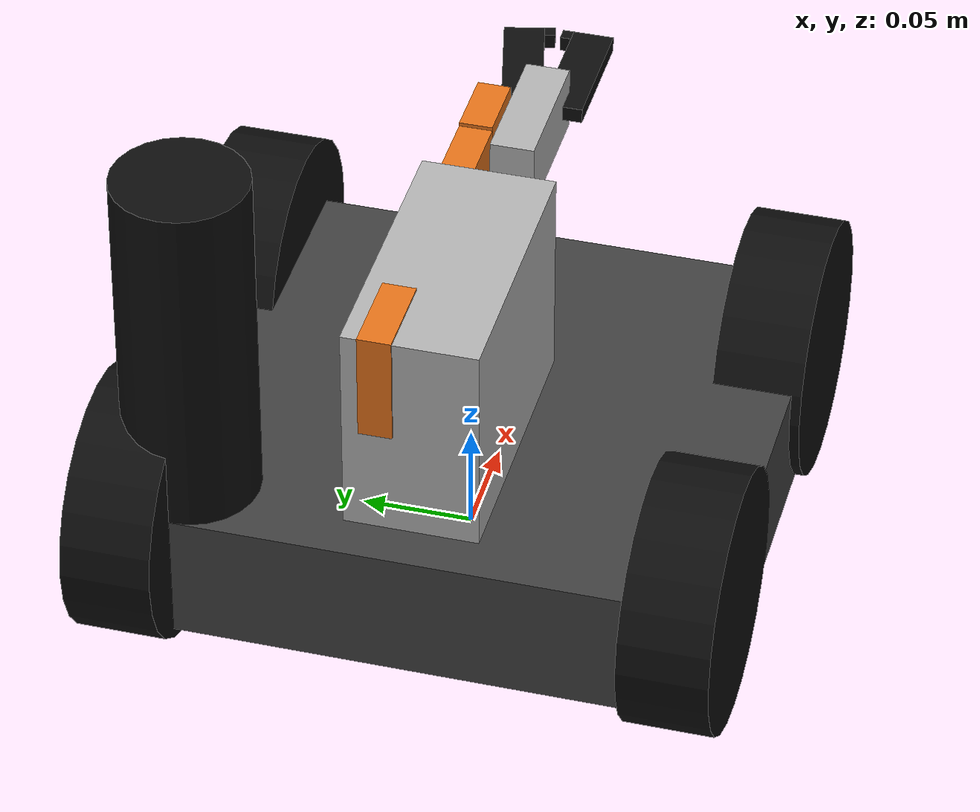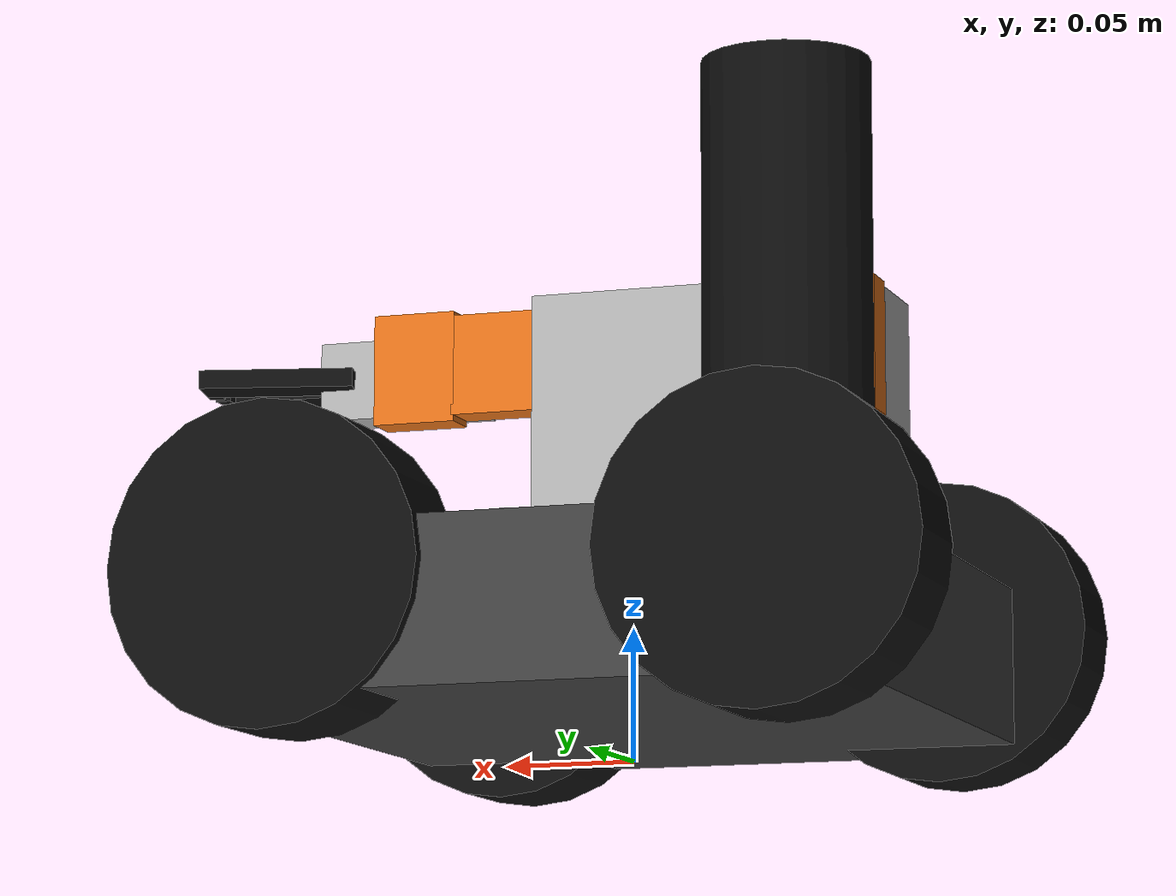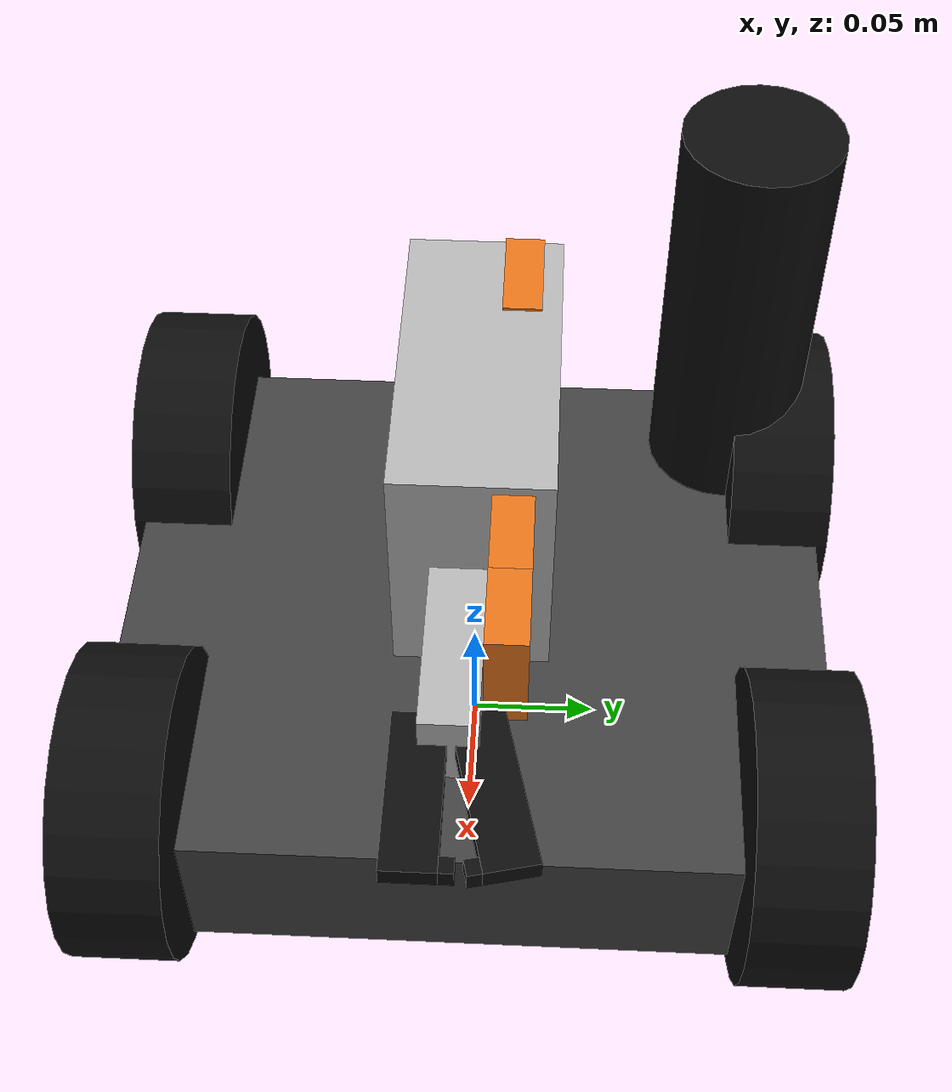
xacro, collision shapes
<?xml version="1.0"?>
<robot name="coco" xmlns:xacro="http://www.ros.org/wiki/xacro">

  <xacro:property name="mesh_pkg"     value="package://gazebo_models/meshes"/>
  <xacro:property name="mesh_scale"   value="0.001 0.001 0.001"/>
  <xacro:property name="wheel_radius" value="0.0585"/>
  <xacro:property name="wheel_width"  value="0.04"/>
  <xacro:property name="wheel_mass"   value="0.4"/>
  <xacro:property name="arm_effort"   value="10.0"/>
  <xacro:property name="arm_velocity" value="2.0"/>

  <material name="coco_dark_grey"><color rgba="0.25 0.25 0.25 1"/></material>
  <material name="coco_black"><color rgba="0.05 0.05 0.05 1"/></material>
  <material name="coco_orange"><color rgba="0.9 0.45 0.1 1"/></material>
  <material name="coco_light_grey"><color rgba="0.7 0.7 0.7 1"/></material>

  <!-- ════════════════════════ BASE ════════════════════════ -->

  <link name="base_footprint"/>

  <!-- base_link sits at axle height; wheels contact ground 0.0135 m below -->
  <joint name="base_footprint_joint" type="fixed">
    <origin xyz="0 0 0.0135" rpy="0 0 0"/>
    <parent link="base_footprint"/>
    <child link="base_link"/>
  </joint>

  <link name="base_link"/>

  <!-- Re-rooting joint: maps the CAD frame (Y-up) onto the z-up base_link.
       Derivation: new = (x_cad + 0.12, -z_cad - 0.08, y_cad), i.e. the four
       wheel joints land at (±0.09, ±0.137, 0.045). -->
  <joint name="chassis_joint" type="fixed">
    <origin xyz="0.12 -0.08 0" rpy="1.5707963267948966 0 0"/>
    <parent link="base_link"/>
    <child link="chassis_link"/>
  </joint>

  <link name="chassis_link">
    <inertial>
      <origin xyz="-0.11999999999999998 0.03034175823095615 -0.08" rpy="0 0 0"/>
      <mass value="1.041325435922023"/>
      <inertia ixx="0.0037170473661447996" iyy="0.008245766799475876" izz="0.005624963316002818"
               ixy="8.673617379884035e-19" iyz="8.673617379884035e-19" ixz="-6.938893903907228e-18"/>
    </inertial>
    <visual name="chassis_visual">
      <origin xyz="0 0 0" rpy="0 0 0"/>
      <geometry>
        <mesh filename="${mesh_pkg}/base.stl" scale="${mesh_scale}"/>
      </geometry>
      <material name="coco_dark_grey"/>
    </visual>
    <!-- Primitive collision (mesh bbox): big RTF win over STL collision -->
    <collision name="chassis_collision">
      <origin xyz="-0.12 0.03 -0.08" rpy="0 0 0"/>
      <geometry>
        <box size="0.24 0.06 0.274"/>
      </geometry>
    </collision>
  </link>

  <xacro:macro name="wheel_link" params="name mesh">
    <link name="${name}">
      <inertial>
        <origin xyz="0 0 -0.0138190943" rpy="0 0 0"/>
        <mass value="${wheel_mass}"/>
        <!-- solid cylinder: izz = mr^2/2, ixx = iyy = m(3r^2 + w^2)/12 -->
        <inertia ixx="3.95e-04" iyy="3.95e-04" izz="6.85e-04"
                 ixy="0" iyz="0" ixz="0"/>
      </inertial>
      <visual name="${name}_visual">
        <origin xyz="2.387e-06 0.008117301100053282 0.01616833941417112" rpy="1.5707963267679181 0 0"/>
        <geometry>
          <mesh filename="${mesh_pkg}/${mesh}" scale="${mesh_scale}"/>
        </geometry>
        <material name="coco_black"/>
      </visual>
      <collision name="${name}_collision">
        <origin xyz="0 0 -0.0155" rpy="0 0 0"/>
        <geometry>
          <cylinder radius="${wheel_radius}" length="${wheel_width}"/>
        </geometry>
      </collision>
    </link>
  </xacro:macro>

  <xacro:wheel_link name="wheel1" mesh="wheel1.stl"/>
  <xacro:wheel_link name="wheel2" mesh="wheel2.stl"/>
  <xacro:wheel_link name="wheel3" mesh="wheel3.stl"/>
  <xacro:wheel_link name="wheel4" mesh="wheel4.stl"/>

  <!-- Right side (wheels 1,2): CAD frame upright, axis flipped to 0 0 -1 so
       +velocity = forward. Left side (wheels 3,4): CAD frame rolled pi,
       axis 0 0 1 already gives +velocity = forward. -->
  <joint name="base_Revolute-1" type="continuous">
    <origin xyz="-0.03 0.045 0.057" rpy="0 0 0"/>
    <parent link="chassis_link"/>
    <child link="wheel1"/>
    <axis xyz="0 0 -1"/>
    <dynamics damping="0.01" friction="0.05"/>
    <limit effort="0.4" velocity="15.0"/>
  </joint>
  <joint name="base_Revolute-2" type="continuous">
    <origin xyz="-0.21 0.045 0.057" rpy="0 0 0"/>
    <parent link="chassis_link"/>
    <child link="wheel2"/>
    <axis xyz="0 0 -1"/>
    <dynamics damping="0.01" friction="0.05"/>
    <limit effort="0.4" velocity="15.0"/>
  </joint>
  <joint name="base_Revolute-3" type="continuous">
    <origin xyz="-0.03 0.045 -0.217" rpy="3.141592653589793 0 0"/>
    <parent link="chassis_link"/>
    <child link="wheel3"/>
    <axis xyz="0 0 1"/>
    <dynamics damping="0.01" friction="0.05"/>
    <limit effort="0.4" velocity="15.0"/>
  </joint>
  <joint name="base_Revolute-4" type="continuous">
    <origin xyz="-0.21 0.045 -0.217" rpy="3.141592653589793 0 0"/>
    <parent link="chassis_link"/>
    <child link="wheel4"/>
    <axis xyz="0 0 1"/>
    <dynamics damping="0.01" friction="0.05"/>
    <limit effort="0.4" velocity="15.0"/>
  </joint>

  <link name="m_link1">
    <inertial>
      <origin xyz="-0.03854063080383259 -0.0015856480020825358 0.04275065515243506" rpy="0 0 0"/>
      <mass value="0.10501532872977405"/>
      <inertia ixx="0.00010224213087689287" iyy="0.00021767174405659022" izz="0.00013090575214547108"
               ixy="-3.3343062572426755e-06" iyz="3.011180028965072e-06" ixz="9.638287881954372e-05"/>
    </inertial>
    <visual name="m_link1_visual">
      <origin xyz="-0.018369053406696097 0.002499999962747097 0.029475549941264376" rpy="0 0 0"/>
      <geometry>
        <mesh filename="${mesh_pkg}/m_link1.stl" scale="${mesh_scale}"/>
      </geometry>
      <material name="coco_light_grey"/>
    </visual>
    <collision name="m_link1_collision">
      <origin xyz="-0.0345 0.0 0.0495" rpy="0 0 0"/>
      <geometry>
        <box size="0.129 0.060 0.099"/>
      </geometry>
    </collision>
  </link>

  <link name="m_link2">
    <inertial>
      <origin xyz="0.06604665739982733 -0.00550001164803783 -0.0009375331400820297" rpy="0 0 0"/>
      <mass value="0.07714503259769957"/>
      <inertia ixx="9.355290836035222e-06" iyy="0.00027097957152510477" izz="0.0002633781068698384"
               ixy="-7.937952985967445e-07" iyz="2.2876686443025918e-08" ixz="2.1753091556992897e-06"/>
    </inertial>
    <visual name="m_link2_visual">
      <origin xyz="0.09980773579424788 -0.010000000111758691 -0.025756860748654162" rpy="0 0.007575854115264767 0"/>
      <geometry>
        <mesh filename="${mesh_pkg}/m_link2.stl" scale="${mesh_scale}"/>
      </geometry>
      <material name="coco_orange"/>
    </visual>
    <collision name="m_link2_collision_shoulder_block">
      <origin xyz="-0.005 -0.0075 0.0" rpy="0 0 0"/>
      <geometry>
        <box size="0.040 0.015 0.050"/>
      </geometry>
    </collision>
    <collision name="m_link2_collision_beam">
      <origin xyz="0.0775 -0.0075 -0.0015" rpy="0 0 0"/>
      <geometry>
        <box size="0.125 0.015 0.038"/>
      </geometry>
    </collision>
    <collision name="m_link2_collision_elbow_block">
      <origin xyz="0.155 -0.0075 -0.0012" rpy="0 0 0"/>
      <geometry>
        <box size="0.032 0.015 0.042"/>
      </geometry>
    </collision>
  </link>

  <link name="m_link3">
    <inertial>
      <origin xyz="0.011018238497968848 0.009999999888241292 -1.9935736369163238e-05" rpy="0 0 0"/>
      <mass value="0.024128837009105796"/>
      <inertia ixx="1.8845190178237389e-06" iyy="7.548306330095421e-06" izz="7.269906777337368e-06"
               ixy="1.3559074268166147e-20" iyz="5.6005324621510986e-39" ixz="9.746960985909268e-09"/>
    </inertial>
    <visual name="m_link3_visual">
      <origin xyz="-4.49683090764097e-09 -1.1175870895385742e-10 2.7528110546626294e-09" rpy="-3.141592653589793 -0.0018119992531012543 3.141592653589793"/>
      <geometry>
        <mesh filename="${mesh_pkg}/m_link3.stl" scale="${mesh_scale}"/>
      </geometry>
      <material name="coco_light_grey"/>
    </visual>
    <collision name="m_link3_collision">
      <origin xyz="0.0169 0.01 0.0" rpy="0 0 0"/>
      <geometry>
        <box size="0.064 0.020 0.030"/>
      </geometry>
    </collision>
  </link>

  <link name="grip1">
    <inertial>
      <origin xyz="0.022687836333347696 0.004041120571939869 0.006491176980784364" rpy="0 0 0"/>
      <mass value="0.0019453742039578018"/>
      <inertia ixx="4.348735470033379e-08" iyy="6.250592176565233e-07" izz="5.974629046405576e-07"
               ixy="-1.0538123946724974e-09" iyz="-2.2111795926127908e-10" ixz="-1.2202969558862574e-07"/>
    </inertial>
    <visual name="grip1_visual">
      <origin xyz="-1.3593625099403983e-05 0.0074999912986458295 -1.1175870895385742e-10" rpy="-3.141592653589793 9.832692144899154e-09 0.001811999253101829"/>
      <geometry>
        <mesh filename="${mesh_pkg}/grip1.stl" scale="${mesh_scale}"/>
      </geometry>
      <material name="coco_black"/>
    </visual>
    <collision name="grip1_collision">
      <origin xyz="0.0249 0.004 0.0048" rpy="0 0 0"/>
      <geometry>
        <box size="0.059 0.007 0.0185"/>
      </geometry>
    </collision>
    <collision name="grip1_lip">
      <origin xyz="0.0514 0.004 -0.00695" rpy="0 0 0"/>
      <geometry>
        <box size="0.006 0.007 0.005"/>
      </geometry>
    </collision>
  </link>

  <link name="grip2">
    <inertial>
      <origin xyz="0.02057296729304557 0.004037288426624359 -0.01156102460324302" rpy="0 0 0"/>
      <mass value="0.0019453742039578018"/>
      <inertia ixx="1.2796522234849025e-07" iyy="6.250594950268097e-07" izz="5.129847596221384e-07"
               ixy="-9.007383940598359e-10" iyz="4.2322370849995914e-10" ixz="2.335670086952937e-07"/>
    </inertial>
    <visual name="grip2_visual">
      <origin xyz="-9.096372686928644e-07 0.0005000027903372128 -1.1175870895385742e-10" rpy="6.964882040425079e-18 0.23324311682993576 0.001811999253101171"/>
      <geometry>
        <mesh filename="${mesh_pkg}/grip2.stl" scale="${mesh_scale}"/>
      </geometry>
      <material name="coco_black"/>
    </visual>
    <collision name="grip2_collision">
      <origin xyz="0.0231 0.004 -0.0104" rpy="0 0.2332 0"/>
      <geometry>
        <box size="0.059 0.007 0.0185"/>
      </geometry>
    </collision>
    <!-- Mirror of grip1_lip (+z is inward for this finger); origin is the
         pad-frame tip offset rotated by the pad's 0.2332 rad pitch. -->
    <collision name="grip2_lip">
      <origin xyz="0.0516 0.004 -0.00509" rpy="0 0.2332 0"/>
      <geometry>
        <box size="0.006 0.007 0.005"/>
      </geometry>
    </collision>
  </link>

  <joint name="base_Rigid-5" type="fixed">
    <origin xyz="-0.12 0.06 -0.08" rpy="-1.5707963267948966 0 0"/>
    <parent link="chassis_link"/>
    <child link="m_link1"/>
  </joint>

  <joint name="m_link1_Revolute-6" type="revolute">
    <origin xyz="-0.075 0.0075 0.075" rpy="3.141592653589793 0 0"/>
    <parent link="m_link1"/>
    <child link="m_link2"/>
    <axis xyz="0 -1 0"/>
    <limit effort="${arm_effort}" velocity="${arm_velocity}" lower="-3.84" upper="1.0"/>
    <dynamics damping="0.2" friction="0.1"/>
  </joint>

  <joint name="m_link2_Revolute-7" type="revolute">
    <origin xyz="0.1499957 0.0 -0.0011363699999999977" rpy="0 0 0"/>
    <parent link="m_link2"/>
    <child link="m_link3"/>
    <axis xyz="0 1 0"/>
    <limit effort="${arm_effort}" velocity="${arm_velocity}" lower="-1.6" upper="1.6"/>
    <dynamics damping="0.2" friction="0.1"/>
  </joint>

  <joint name="m_link3_Revolute-8" type="revolute">
    <origin xyz="0.040901179999999995 0.015 0.0039258999999999935" rpy="-1.5707963267948966 0 0"/>
    <parent link="m_link3"/>
    <child link="grip1"/>
    <axis xyz="0.001812 -0.999998 0"/>
    <limit effort="${arm_effort}" velocity="${arm_velocity}" lower="-0.35" upper="1.1"/>
    <dynamics damping="0.1" friction="0.05"/>
  </joint>

  <joint name="m_link3_Revolute-9" type="revolute">
    <origin xyz="0.040901179999999995 0.005 0.0039258999999999935" rpy="-1.5707963267948966 0 0"/>
    <parent link="m_link3"/>
    <child link="grip2"/>
    <axis xyz="0.001812 -0.999998 0"/>
    <limit effort="${arm_effort}" velocity="${arm_velocity}" lower="-1.1" upper="0.35"/>
    <dynamics damping="0.1" friction="0.05"/>
  </joint>

  <link name="lidar_link">
    <inertial>
      <origin xyz="0 0 0" rpy="0 0 0"/>
      <mass value="0.08"/>
      <inertia ixx="2e-05" iyy="2e-05" izz="2e-05" ixy="0" iyz="0" ixz="0"/>
    </inertial>
    <visual name="lidar_visual">
      <origin xyz="0 0 0" rpy="0 0 0"/>
      <geometry><cylinder radius="0.03" length="0.04"/></geometry>
      <material name="coco_black"/>
    </visual>
    <visual name="lidar_mast_visual">
      <origin xyz="0 0 -0.08" rpy="0 0 0"/>
      <geometry><cylinder radius="0.012" length="0.12"/></geometry>
      <material name="coco_dark_grey"/>
    </visual>
    <collision name="lidar_collision">
      <origin xyz="0 0 -0.07" rpy="0 0 0"/>
      <geometry><cylinder radius="0.03" length="0.18"/></geometry>
    </collision>
  </link>

  <joint name="lidar_joint" type="fixed">
    <origin xyz="-0.09 0.10 0.20" rpy="0 0 0"/>
    <parent link="base_link"/>
    <child link="lidar_link"/>
  </joint>

  <link name="camera_link">
    <inertial>
      <origin xyz="0 0 0" rpy="0 0 0"/>
      <mass value="0.03"/>
      <inertia ixx="1e-05" iyy="1e-05" izz="1e-05" ixy="0" iyz="0" ixz="0"/>
    </inertial>
    <visual name="camera_visual">
      <origin xyz="0 0 0" rpy="0 0 0"/>
      <geometry><box size="0.015 0.06 0.02"/></geometry>
      <material name="coco_dark_grey"/>
    </visual>
  </link>

  <joint name="camera_joint" type="fixed">
    <origin xyz="0.125 0 0.055" rpy="0 0 0"/>
    <parent link="base_link"/>
    <child link="camera_link"/>
  </joint>

  <!-- Standard REP-103 optical frame (z forward, x right) for point clouds -->
  <link name="camera_optical_frame"/>
  <joint name="camera_optical_joint" type="fixed">
    <origin xyz="0 0 0" rpy="-1.5707963267948966 0 -1.5707963267948966"/>
    <parent link="camera_link"/>
    <child link="camera_optical_frame"/>
  </joint>

  <!-- IMU at the body centre: attitude feedback for ramp traversal (RL) -->
  <link name="imu_link">
    <inertial>
      <origin xyz="0 0 0" rpy="0 0 0"/>
      <mass value="0.01"/>
      <inertia ixx="1e-06" iyy="1e-06" izz="1e-06" ixy="0" iyz="0" ixz="0"/>
    </inertial>
  </link>
  <joint name="imu_joint" type="fixed">
    <origin xyz="0 0 0.04" rpy="0 0 0"/>
    <parent link="base_link"/>
    <child link="imu_link"/>
  </joint>

  <gazebo reference="imu_link">
    <sensor name="imu" type="imu">
      <topic>imu</topic>
      <gz_frame_id>imu_link</gz_frame_id>
      <update_rate>50</update_rate>
      <always_on>true</always_on>
    </sensor>
  </gazebo>

  <gazebo reference="lidar_link">
    <sensor name="lidar" type="gpu_lidar">
      <topic>scan</topic>
      <gz_frame_id>lidar_link</gz_frame_id>
      <update_rate>10</update_rate>
      <always_on>true</always_on>
      <visualize>false</visualize>
      <lidar>
        <scan>
          <horizontal>
            <samples>480</samples>
            <resolution>1</resolution>
            <min_angle>-2.0944</min_angle>
            <max_angle>2.0944</max_angle>
          </horizontal>
        </scan>
        <range>
          <min>0.15</min>
          <max>12.0</max>
          <resolution>0.01</resolution>
        </range>
      </lidar>
    </sensor>
  </gazebo>

  <gazebo reference="camera_link">
    <sensor name="camera" type="rgbd_camera">
      <topic>camera</topic>
      <gz_frame_id>camera_optical_frame</gz_frame_id>
      <update_rate>15</update_rate>
      <always_on>true</always_on>
      <visualize>false</visualize>
      <camera>
        <horizontal_fov>1.25</horizontal_fov>
        <image>
          <width>320</width>
          <height>240</height>
          <format>R8G8B8</format>
        </image>
        <clip><near>0.05</near><far>8.0</far></clip>
        <depth_camera><clip><near>0.1</near><far>8.0</far></clip></depth_camera>
      </camera>
    </sensor>
  </gazebo>

  <ros2_control name="GazeboSimSystem" type="system">
    <hardware>
      <plugin>gz_ros2_control/GazeboSimSystem</plugin>
    </hardware>

    <xacro:macro name="wheel_iface" params="joint">
      <joint name="${joint}">
        <command_interface name="velocity">
          <param name="min">-15.0</param>
          <param name="max">15.0</param>
        </command_interface>
        <state_interface name="position"/>
        <state_interface name="velocity"/>
      </joint>
    </xacro:macro>
    <xacro:wheel_iface joint="base_Revolute-1"/>
    <xacro:wheel_iface joint="base_Revolute-2"/>
    <xacro:wheel_iface joint="base_Revolute-3"/>
    <xacro:wheel_iface joint="base_Revolute-4"/>

    <xacro:macro name="arm_iface" params="joint">
      <joint name="${joint}">
        <command_interface name="position"/>
        <state_interface name="position">
          <param name="initial_value">0.0</param>
        </state_interface>
        <state_interface name="velocity"/>
      </joint>
    </xacro:macro>
    <xacro:arm_iface joint="m_link1_Revolute-6"/>
    <xacro:arm_iface joint="m_link2_Revolute-7"/>
    <xacro:arm_iface joint="m_link3_Revolute-8"/>
    <xacro:arm_iface joint="m_link3_Revolute-9"/>
  </ros2_control>

  <gazebo>
    <plugin filename="gz_ros2_control-system" name="gz_ros2_control::GazeboSimROS2ControlPlugin">
      <parameters>$(find gazebo_models)/urdf/coco_controllers.yaml</parameters>
    </plugin>
    <!-- Evaluator-only world pose; never an autonomy input or normal TF. -->
    <plugin filename="gz-sim-odometry-publisher-system" name="gz::sim::systems::OdometryPublisher">
      <odom_frame>world</odom_frame>
      <robot_base_frame>base_footprint</robot_base_frame>
      <odom_topic>/eval/robot/odometry</odom_topic>
      <odom_publish_frequency>50</odom_publish_frequency>
      <dimensions>3</dimensions>
    </plugin>
  </gazebo>

  <xacro:macro name="magnet" params="model link:=link">
    <gazebo>
      <plugin filename="gz-sim-detachable-joint-system"
              name="gz::sim::systems::DetachableJoint">
        <parent_link>m_link3</parent_link>
        <child_model>${model}</child_model>
        <child_link>${link}</child_link>
        <attach_topic>/magnet/${model}/attach</attach_topic>
        <detach_topic>/magnet/${model}/detach</detach_topic>
        <output_topic>/magnet/${model}/state</output_topic>
        <suppress_child_warning>true</suppress_child_warning>
      </plugin>
    </gazebo>
  </xacro:macro>

  <!-- The pick-and-place demo's cylinder (Demo 4, spawned by
       pick_place.py). The mission's four targets follow. -->
  <xacro:magnet model="pick_target"/>
  <!-- The fetch mission's four platform targets
       (full_world_robo.launch.py, traverse:=true). Each binds
       independently, so the mission picks one and leaves three. -->
  <xacro:magnet model="target_red"/>
  <xacro:magnet model="target_green"/>
  <xacro:magnet model="target_blue"/>
  <xacro:magnet model="target_yellow"/>

  <xacro:macro name="wheel_friction" params="name">
    <gazebo reference="${name}">
      <mu1>0.7</mu1>
      <mu2>0.7</mu2>
    </gazebo>
  </xacro:macro>
  <xacro:wheel_friction name="wheel1"/>
  <xacro:wheel_friction name="wheel2"/>
  <xacro:wheel_friction name="wheel3"/>
  <xacro:wheel_friction name="wheel4"/>

  <!-- High-friction finger pads so a pinched object does not slide out
       vertically during the lift -->
  <gazebo reference="grip1">
    <mu1>2.5</mu1>
    <mu2>2.5</mu2>
  </gazebo>
  <gazebo reference="grip2">
    <mu1>2.5</mu1>
    <mu2>2.5</mu2>
  </gazebo>

</robot>
